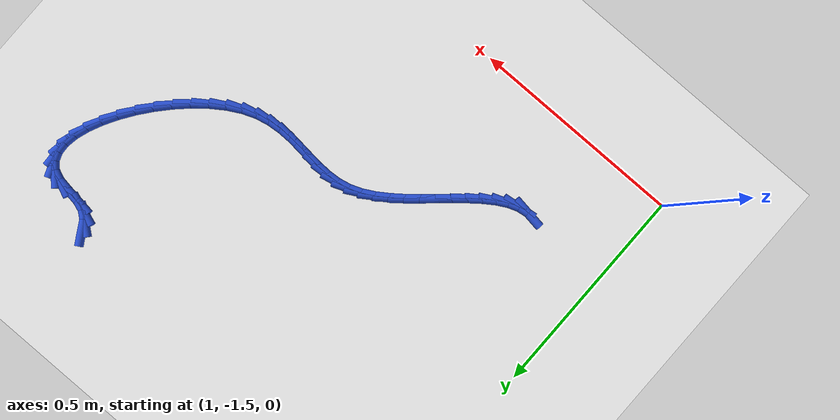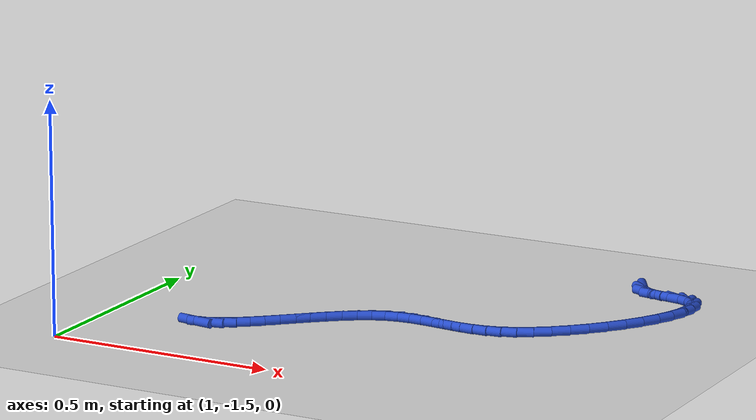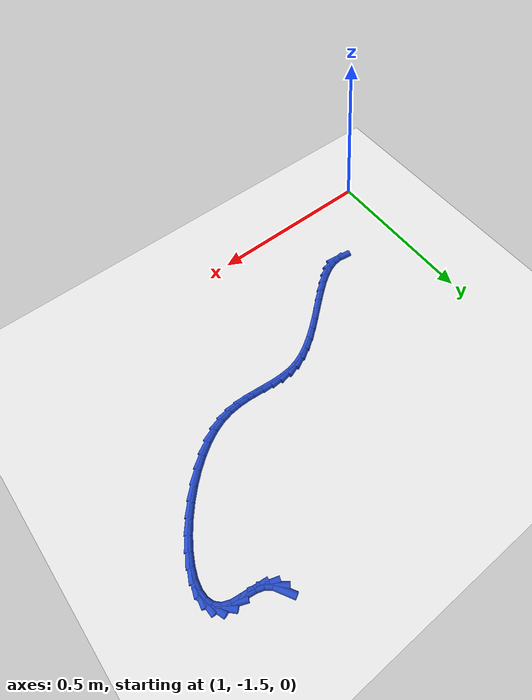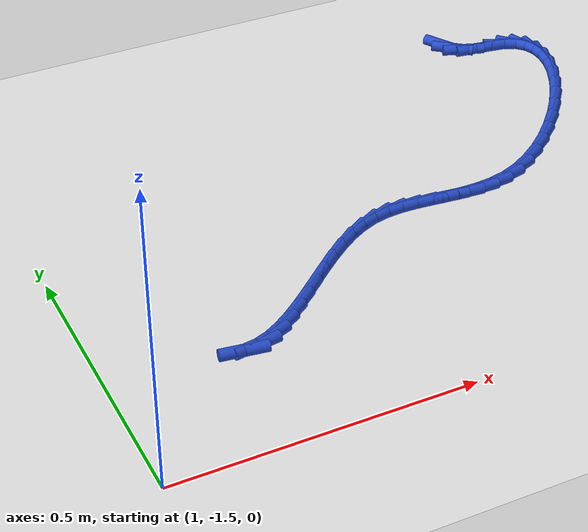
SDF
<sdf version="1.6">
 <world name="default">
  <model name="ground_plane">
   <static>1</static>
   <link name="link">
    <collision name="collision">
     <geometry><plane><normal>0 0 1</normal><size>100 100</size></plane></geometry>
     <surface><friction><ode><mu>100</mu><mu2>50</mu2></ode></friction></surface>
    </collision>
    <visual name="visual">
     <cast_shadows>0</cast_shadows>
     <geometry><plane><normal>0 0 1</normal><size>100 100</size></plane></geometry>
     <material>
      <script><uri>file://media/materials/scripts/gazebo.material</uri><name>Gazebo/WhiteGlow</name></script>
     </material>
    </visual>
   </link>
  </model>
  <model name="line">
   <link name="link_149">
    <pose>1.933272897632597 -0.6272035513180001 0.01 0 1.57 -1.0485199919013697</pose>
    <collision name="collision">
     <geometry><cylinder><radius>0.01</radius><length>0.08</length></cylinder></geometry>
    </collision>
    <visual name="visual">
     <material>
      <script><name>Gazebo/Blue</name><uri>file://media/materials/scripts/gazebo.material</uri></script>
     </material>
     <geometry><cylinder><radius>0.01</radius><length>0.08</length></cylinder></geometry>
    </visual>
   </link>
   <link name="link_150">
    <pose>1.9435389623741792 -0.6450393267967356 0.01 0 1.57 -0.6817144069645771</pose>
    <collision name="collision">
     <geometry><cylinder><radius>0.01</radius><length>0.08</length></cylinder></geometry>
    </collision>
    <visual name="visual">
     <material>
      <script><name>Gazebo/Blue</name><uri>file://media/materials/scripts/gazebo.material</uri></script>
     </material>
     <geometry><cylinder><radius>0.01</radius><length>0.08</length></cylinder></geometry>
    </visual>
   </link>
   <link name="link_151">
    <pose>1.9598958158896775 -0.6583129269860671 0.01 0 1.57 -0.3409675205098047</pose>
    <collision name="collision">
     <geometry><cylinder><radius>0.01</radius><length>0.08</length></cylinder></geometry>
    </collision>
    <visual name="visual">
     <material>
      <script><name>Gazebo/Blue</name><uri>file://media/materials/scripts/gazebo.material</uri></script>
     </material>
     <geometry><cylinder><radius>0.01</radius><length>0.08</length></cylinder></geometry>
    </visual>
   </link>
   <link name="link_152">
    <pose>1.9830498011918594 -0.6665285592056602 0.01 0 1.57 -0.13670767205928291</pose>
    <collision name="collision">
     <geometry><cylinder><radius>0.01</radius><length>0.08</length></cylinder></geometry>
    </collision>
    <visual name="visual">
     <material>
      <script><name>Gazebo/Blue</name><uri>file://media/materials/scripts/gazebo.material</uri></script>
     </material>
     <geometry><cylinder><radius>0.01</radius><length>0.08</length></cylinder></geometry>
    </visual>
   </link>
   <link name="link_153">
    <pose>2.0119743921731588 -0.6705075916727451 0.01 0 1.57 -0.1566440936238921</pose>
    <collision name="collision">
     <geometry><cylinder><radius>0.01</radius><length>0.08</length></cylinder></geometry>
    </collision>
    <visual name="visual">
     <material>
      <script><name>Gazebo/Blue</name><uri>file://media/materials/scripts/gazebo.material</uri></script>
     </material>
     <geometry><cylinder><radius>0.01</radius><length>0.08</length></cylinder></geometry>
    </visual>
   </link>
   <link name="link_154">
    <pose>2.040464910424676 -0.6750073273228432 0.01 0 1.57 -0.4142991693848907</pose>
    <collision name="collision">
     <geometry><cylinder><radius>0.01</radius><length>0.08</length></cylinder></geometry>
    </collision>
    <visual name="visual">
     <material>
      <script><name>Gazebo/Blue</name><uri>file://media/materials/scripts/gazebo.material</uri></script>
     </material>
     <geometry><cylinder><radius>0.01</radius><length>0.08</length></cylinder></geometry>
    </visual>
   </link>
   <link name="link_155">
    <pose>2.0624125277230676 -0.6846588382454566 0.01 0 1.57 -0.8142571966492038</pose>
    <collision name="collision">
     <geometry><cylinder><radius>0.01</radius><length>0.08</length></cylinder></geometry>
    </collision>
    <visual name="visual">
     <material>
      <script><name>Gazebo/Blue</name><uri>file://media/materials/scripts/gazebo.material</uri></script>
     </material>
     <geometry><cylinder><radius>0.01</radius><length>0.08</length></cylinder></geometry>
    </visual>
   </link>
   <link name="link_156">
    <pose>2.0768346310569448 -0.6999383392045715 0.01 0 1.57 -1.2157274904272437</pose>
    <collision name="collision">
     <geometry><cylinder><radius>0.01</radius><length>0.08</length></cylinder></geometry>
    </collision>
    <visual name="visual">
     <material>
      <script><name>Gazebo/Blue</name><uri>file://media/materials/scripts/gazebo.material</uri></script>
     </material>
     <geometry><cylinder><radius>0.01</radius><length>0.08</length></cylinder></geometry>
    </visual>
   </link>
   <link name="link_157">
    <pose>2.0842977883127296 -0.7200664157454046 0.01 0 1.57 -1.526558970409639</pose>
    <collision name="collision">
     <geometry><cylinder><radius>0.01</radius><length>0.08</length></cylinder></geometry>
    </collision>
    <visual name="visual">
     <material>
      <script><name>Gazebo/Blue</name><uri>file://media/materials/scripts/gazebo.material</uri></script>
     </material>
     <geometry><cylinder><radius>0.01</radius><length>0.08</length></cylinder></geometry>
    </visual>
   </link>
   <link name="link_158">
    <pose>2.0853688971075584 -0.7442633861625771 0.01 0 1.57 1.3995295979028581</pose>
    <collision name="collision">
     <geometry><cylinder><radius>0.01</radius><length>0.08</length></cylinder></geometry>
    </collision>
    <visual name="visual">
     <material>
      <script><name>Gazebo/Blue</name><uri>file://media/materials/scripts/gazebo.material</uri></script>
     </material>
     <geometry><cylinder><radius>0.01</radius><length>0.08</length></cylinder></geometry>
    </visual>
   </link>
   <link name="link_159">
    <pose>2.0806148550585686 -0.7717495687507102 0.01 0 1.57 1.2486340423599236</pose>
    <collision name="collision">
     <geometry><cylinder><radius>0.01</radius><length>0.08</length></cylinder></geometry>
    </collision>
    <visual name="visual">
     <material>
      <script><name>Gazebo/Blue</name><uri>file://media/materials/scripts/gazebo.material</uri></script>
     </material>
     <geometry><cylinder><radius>0.01</radius><length>0.08</length></cylinder></geometry>
    </visual>
   </link>
   <link name="link_160">
    <pose>2.070602559782897 -0.8017452818044247 0.01 0 1.57 1.1368024465950453</pose>
    <collision name="collision">
     <geometry><cylinder><radius>0.01</radius><length>0.08</length></cylinder></geometry>
    </collision>
    <visual name="visual">
     <material>
      <script><name>Gazebo/Blue</name><uri>file://media/materials/scripts/gazebo.material</uri></script>
     </material>
     <geometry><cylinder><radius>0.01</radius><length>0.08</length></cylinder></geometry>
    </visual>
   </link>
   <link name="link_161">
    <pose>2.0558989088976802 -0.8334708436183419 0.01 0 1.57 1.0480525516493537</pose>
    <collision name="collision">
     <geometry><cylinder><radius>0.01</radius><length>0.08</length></cylinder></geometry>
    </collision>
    <visual name="visual">
     <material>
      <script><name>Gazebo/Blue</name><uri>file://media/materials/scripts/gazebo.material</uri></script>
     </material>
     <geometry><cylinder><radius>0.01</radius><length>0.08</length></cylinder></geometry>
    </visual>
   </link>
   <link name="link_162">
    <pose>2.037070800020055 -0.8661465724870822 0.01 0 1.57 0.9725744187295285</pose>
    <collision name="collision">
     <geometry><cylinder><radius>0.01</radius><length>0.08</length></cylinder></geometry>
    </collision>
    <visual name="visual">
     <material>
      <script><name>Gazebo/Blue</name><uri>file://media/materials/scripts/gazebo.material</uri></script>
     </material>
     <geometry><cylinder><radius>0.01</radius><length>0.08</length></cylinder></geometry>
    </visual>
   </link>
   <link name="link_163">
    <pose>2.014685130767158 -0.8989927867052666 0.01 0 1.57 0.9039215594914466</pose>
    <collision name="collision">
     <geometry><cylinder><radius>0.01</radius><length>0.08</length></cylinder></geometry>
    </collision>
    <visual name="visual">
     <material>
      <script><name>Gazebo/Blue</name><uri>file://media/materials/scripts/gazebo.material</uri></script>
     </material>
     <geometry><cylinder><radius>0.01</radius><length>0.08</length></cylinder></geometry>
    </visual>
   </link>
   <link name="link_164">
    <pose>1.9893087987561262 -0.9312298045675163 0.01 0 1.57 0.8373230454366403</pose>
    <collision name="collision">
     <geometry><cylinder><radius>0.01</radius><length>0.08</length></cylinder></geometry>
    </collision>
    <visual name="visual">
     <material>
      <script><name>Gazebo/Blue</name><uri>file://media/materials/scripts/gazebo.material</uri></script>
     </material>
     <geometry><cylinder><radius>0.01</radius><length>0.08</length></cylinder></geometry>
    </visual>
   </link>
   <link name="link_165">
    <pose>1.9615087016040955 -0.9620779443684531 0.01 0 1.57 0.7686454878702392</pose>
    <collision name="collision">
     <geometry><cylinder><radius>0.01</radius><length>0.08</length></cylinder></geometry>
    </collision>
    <visual name="visual">
     <material>
      <script><name>Gazebo/Blue</name><uri>file://media/materials/scripts/gazebo.material</uri></script>
     </material>
     <geometry><cylinder><radius>0.01</radius><length>0.08</length></cylinder></geometry>
    </visual>
   </link>
   <link name="link_166">
    <pose>1.9318517369282047 -0.9907575244026962 0.01 0 1.57 0.6936355108028671</pose>
    <collision name="collision">
     <geometry><cylinder><radius>0.01</radius><length>0.08</length></cylinder></geometry>
    </collision>
    <visual name="visual">
     <material>
      <script><name>Gazebo/Blue</name><uri>file://media/materials/scripts/gazebo.material</uri></script>
     </material>
     <geometry><cylinder><radius>0.01</radius><length>0.08</length></cylinder></geometry>
    </visual>
   </link>
   <link name="link_167">
    <pose>1.9009048023455895 -1.016488862964867 0.01 0 1.57 0.6072082182983375</pose>
    <collision name="collision">
     <geometry><cylinder><radius>0.01</radius><length>0.08</length></cylinder></geometry>
    </collision>
    <visual name="visual">
     <material>
      <script><name>Gazebo/Blue</name><uri>file://media/materials/scripts/gazebo.material</uri></script>
     </material>
     <geometry><cylinder><radius>0.01</radius><length>0.08</length></cylinder></geometry>
    </visual>
   </link>
   <link name="link_168">
    <pose>1.869234795473386 -1.0384922783495867 0.01 0 1.57 0.5026359834200846</pose>
    <collision name="collision">
     <geometry><cylinder><radius>0.01</radius><length>0.08</length></cylinder></geometry>
    </collision>
    <visual name="visual">
     <material>
      <script><name>Gazebo/Blue</name><uri>file://media/materials/scripts/gazebo.material</uri></script>
     </material>
     <geometry><cylinder><radius>0.01</radius><length>0.08</length></cylinder></geometry>
    </visual>
   </link>
   <link name="link_169">
    <pose>1.8374086139287316 -1.0559880888514763 0.01 0 1.57 0.3710347021415157</pose>
    <collision name="collision">
     <geometry><cylinder><radius>0.01</radius><length>0.08</length></cylinder></geometry>
    </collision>
    <visual name="visual">
     <material>
      <script><name>Gazebo/Blue</name><uri>file://media/materials/scripts/gazebo.material</uri></script>
     </material>
     <geometry><cylinder><radius>0.01</radius><length>0.08</length></cylinder></geometry>
    </visual>
   </link>
   <link name="link_170">
    <pose>1.8059879254107667 -1.0682124334172352 0.01 0 1.57 0.22257541724513172</pose>
    <collision name="collision">
     <geometry><cylinder><radius>0.01</radius><length>0.08</length></cylinder></geometry>
    </collision>
    <visual name="visual">
     <material>
      <script><name>Gazebo/Blue</name><uri>file://media/materials/scripts/gazebo.material</uri></script>
     </material>
     <geometry><cylinder><radius>0.01</radius><length>0.08</length></cylinder></geometry>
    </visual>
   </link>
   <link name="link_171">
    <pose>1.7752830730910603 -1.0751617149043768 0.01 0 1.57 0.09135434685519551</pose>
    <collision name="collision">
     <geometry><cylinder><radius>0.01</radius><length>0.08</length></cylinder></geometry>
    </collision>
    <visual name="visual">
     <material>
      <script><name>Gazebo/Blue</name><uri>file://media/materials/scripts/gazebo.material</uri></script>
     </material>
     <geometry><cylinder><radius>0.01</radius><length>0.08</length></cylinder></geometry>
    </visual>
   </link>
   <link name="link_172">
    <pose>1.745247062144111 -1.077913293869862 0.01 0 1.57 -0.00972418356324189</pose>
    <collision name="collision">
     <geometry><cylinder><radius>0.01</radius><length>0.08</length></cylinder></geometry>
    </collision>
    <visual name="visual">
     <material>
      <script><name>Gazebo/Blue</name><uri>file://media/materials/scripts/gazebo.material</uri></script>
     </material>
     <geometry><cylinder><radius>0.01</radius><length>0.08</length></cylinder></geometry>
    </visual>
   </link>
   <link name="link_173">
    <pose>1.7158056384439402 -1.0776269910371403 0.01 0 1.57 -0.07469762860860067</pose>
    <collision name="collision">
     <geometry><cylinder><radius>0.01</radius><length>0.08</length></cylinder></geometry>
    </collision>
    <visual name="visual">
     <material>
      <script><name>Gazebo/Blue</name><uri>file://media/materials/scripts/gazebo.material</uri></script>
     </material>
     <geometry><cylinder><radius>0.01</radius><length>0.08</length></cylinder></geometry>
    </visual>
   </link>
   <link name="link_174">
    <pose>1.6868845478645698 -1.0754626271296641 0.01 0 1.57 -0.10088906590190873</pose>
    <collision name="collision">
     <geometry><cylinder><radius>0.01</radius><length>0.08</length></cylinder></geometry>
    </collision>
    <visual name="visual">
     <material>
      <script><name>Gazebo/Blue</name><uri>file://media/materials/scripts/gazebo.material</uri></script>
     </material>
     <geometry><cylinder><radius>0.01</radius><length>0.08</length></cylinder></geometry>
    </visual>
   </link>
   <link name="link_175">
    <pose>1.6584095362800202 -1.072580022870883 0.01 0 1.57 -0.08664187261336506</pose>
    <collision name="collision">
     <geometry><cylinder><radius>0.01</radius><length>0.08</length></cylinder></geometry>
    </collision>
    <visual name="visual">
     <material>
      <script><name>Gazebo/Blue</name><uri>file://media/materials/scripts/gazebo.material</uri></script>
     </material>
     <geometry><cylinder><radius>0.01</radius><length>0.08</length></cylinder></geometry>
    </visual>
   </link>
   <link name="link_176">
    <pose>1.6303063495643122 -1.0701389989842485 0.01 0 1.57 -0.030186985959458238</pose>
    <collision name="collision">
     <geometry><cylinder><radius>0.01</radius><length>0.08</length></cylinder></geometry>
    </collision>
    <visual name="visual">
     <material>
      <script><name>Gazebo/Blue</name><uri>file://media/materials/scripts/gazebo.material</uri></script>
     </material>
     <geometry><cylinder><radius>0.01</radius><length>0.08</length></cylinder></geometry>
    </visual>
   </link>
   <link name="link_177">
    <pose>1.6025007335914683 -1.069299376193211 0.01 0 1.57 0.0695554467782995</pose>
    <collision name="collision">
     <geometry><cylinder><radius>0.01</radius><length>0.08</length></cylinder></geometry>
    </collision>
    <visual name="visual">
     <material>
      <script><name>Gazebo/Blue</name><uri>file://media/materials/scripts/gazebo.material</uri></script>
     </material>
     <geometry><cylinder><radius>0.01</radius><length>0.08</length></cylinder></geometry>
    </visual>
   </link>
   <link name="link_178">
    <pose>1.5749184342355085 -1.071220975221221 0.01 0 1.57 0.20984149854443496</pose>
    <collision name="collision">
     <geometry><cylinder><radius>0.01</radius><length>0.08</length></cylinder></geometry>
    </collision>
    <visual name="visual">
     <material>
      <script><name>Gazebo/Blue</name><uri>file://media/materials/scripts/gazebo.material</uri></script>
     </material>
     <geometry><cylinder><radius>0.01</radius><length>0.08</length></cylinder></geometry>
    </visual>
   </link>
   <link name="link_179">
    <pose>1.5474851973704546 -1.0770636167917294 0.01 0 1.57 0.37004362015655407</pose>
    <collision name="collision">
     <geometry><cylinder><radius>0.01</radius><length>0.08</length></cylinder></geometry>
    </collision>
    <visual name="visual">
     <material>
      <script><name>Gazebo/Blue</name><uri>file://media/materials/scripts/gazebo.material</uri></script>
     </material>
     <geometry><cylinder><radius>0.01</radius><length>0.08</length></cylinder></geometry>
    </visual>
   </link>
   <link name="link_180">
    <pose>1.5201455256892316 -1.0876690402788687 0.01 0 1.57 0.49936027799884064</pose>
    <collision name="collision">
     <geometry><cylinder><radius>0.01</radius><length>0.08</length></cylinder></geometry>
    </collision>
    <visual name="visual">
     <material>
      <script><name>Gazebo/Blue</name><uri>file://media/materials/scripts/gazebo.material</uri></script>
     </material>
     <geometry><cylinder><radius>0.01</radius><length>0.08</length></cylinder></geometry>
    </visual>
   </link>
   <link name="link_181">
    <pose>1.4929242060987 -1.102517511598557 0.01 0 1.57 0.592334418384098</pose>
    <collision name="collision">
     <geometry><cylinder><radius>0.01</radius><length>0.08</length></cylinder></geometry>
    </collision>
    <visual name="visual">
     <material>
      <script><name>Gazebo/Blue</name><uri>file://media/materials/scripts/gazebo.material</uri></script>
     </material>
     <geometry><cylinder><radius>0.01</radius><length>0.08</length></cylinder></geometry>
    </visual>
   </link>
   <link name="link_182">
    <pose>1.465867501588559 -1.1207251015736006 0.01 0 1.57 0.6564473393881012</pose>
    <collision name="collision">
     <geometry><cylinder><radius>0.01</radius><length>0.08</length></cylinder></geometry>
    </collision>
    <visual name="visual">
     <material>
      <script><name>Gazebo/Blue</name><uri>file://media/materials/scripts/gazebo.material</uri></script>
     </material>
     <geometry><cylinder><radius>0.01</radius><length>0.08</length></cylinder></geometry>
    </visual>
   </link>
   <link name="link_183">
    <pose>1.4390216753793532 -1.1414078771120582 0.01 0 1.57 0.6973249769818722</pose>
    <collision name="collision">
     <geometry><cylinder><radius>0.01</radius><length>0.08</length></cylinder></geometry>
    </collision>
    <visual name="visual">
     <material>
      <script><name>Gazebo/Blue</name><uri>file://media/materials/scripts/gazebo.material</uri></script>
     </material>
     <geometry><cylinder><radius>0.01</radius><length>0.08</length></cylinder></geometry>
    </visual>
   </link>
   <link name="link_184">
    <pose>1.4124329906916295 -1.163681905121988 0.01 0 1.57 0.718436143125934</pose>
    <collision name="collision">
     <geometry><cylinder><radius>0.01</radius><length>0.08</length></cylinder></geometry>
    </collision>
    <visual name="visual">
     <material>
      <script><name>Gazebo/Blue</name><uri>file://media/materials/scripts/gazebo.material</uri></script>
     </material>
     <geometry><cylinder><radius>0.01</radius><length>0.08</length></cylinder></geometry>
    </visual>
   </link>
   <link name="link_185">
    <pose>1.3861477107459332 -1.1866632525114493 0.01 0 1.57 0.7212504304443574</pose>
    <collision name="collision">
     <geometry><cylinder><radius>0.01</radius><length>0.08</length></cylinder></geometry>
    </collision>
    <visual name="visual">
     <material>
      <script><name>Gazebo/Blue</name><uri>file://media/materials/scripts/gazebo.material</uri></script>
     </material>
     <geometry><cylinder><radius>0.01</radius><length>0.08</length></cylinder></geometry>
    </visual>
   </link>
   <link name="link_186">
    <pose>1.3602120987628097 -1.209467986188499 0.01 0 1.57 0.7052995249664774</pose>
    <collision name="collision">
     <geometry><cylinder><radius>0.01</radius><length>0.08</length></cylinder></geometry>
    </collision>
    <visual name="visual">
     <material>
      <script><name>Gazebo/Blue</name><uri>file://media/materials/scripts/gazebo.material</uri></script>
     </material>
     <geometry><cylinder><radius>0.01</radius><length>0.08</length></cylinder></geometry>
    </visual>
   </link>
   <link name="link_187">
    <pose>1.334672417962805 -1.2312121730611965 0.01 0 1.57 0.6679432740631557</pose>
    <collision name="collision">
     <geometry><cylinder><radius>0.01</radius><length>0.08</length></cylinder></geometry>
    </collision>
    <visual name="visual">
     <material>
      <script><name>Gazebo/Blue</name><uri>file://media/materials/scripts/gazebo.material</uri></script>
     </material>
     <geometry><cylinder><radius>0.01</radius><length>0.08</length></cylinder></geometry>
    </visual>
   </link>
   <link name="link_188">
    <pose>1.309574931566464 -1.2510118800376004 0.01 0 1.57 0.6037369414707605</pose>
    <collision name="collision">
     <geometry><cylinder><radius>0.01</radius><length>0.08</length></cylinder></geometry>
    </collision>
    <visual name="visual">
     <material>
      <script><name>Gazebo/Blue</name><uri>file://media/materials/scripts/gazebo.material</uri></script>
     </material>
     <geometry><cylinder><radius>0.01</radius><length>0.08</length></cylinder></geometry>
    </visual>
   </link>
   <link name="link_189">
    <pose>1.2849659027943343 -1.2679831740257679 0.01 0 1.57 0.5034195714968386</pose>
    <collision name="collision">
     <geometry><cylinder><radius>0.01</radius><length>0.08</length></cylinder></geometry>
    </collision>
    <visual name="visual">
     <material>
      <script><name>Gazebo/Blue</name><uri>file://media/materials/scripts/gazebo.material</uri></script>
     </material>
     <geometry><cylinder><radius>0.01</radius><length>0.08</length></cylinder></geometry>
    </visual>
   </link>
   <link name="link_190">
    <pose>1.260891594866961 -1.281242121933758 0.01 0 1.57 0.35326146422852334</pose>
    <collision name="collision">
     <geometry><cylinder><radius>0.01</radius><length>0.08</length></cylinder></geometry>
    </collision>
    <visual name="visual">
     <material>
      <script><name>Gazebo/Blue</name><uri>file://media/materials/scripts/gazebo.material</uri></script>
     </material>
     <geometry><cylinder><radius>0.01</radius><length>0.08</length></cylinder></geometry>
    </visual>
   </link>
   <link name="link_191">
    <pose>1.237398271004889 -1.289904790669629 0.01 0 1.57 0.138289723621604</pose>
    <collision name="collision">
     <geometry><cylinder><radius>0.01</radius><length>0.08</length></cylinder></geometry>
    </collision>
    <visual name="visual">
     <material>
      <script><name>Gazebo/Blue</name><uri>file://media/materials/scripts/gazebo.material</uri></script>
     </material>
     <geometry><cylinder><radius>0.01</radius><length>0.08</length></cylinder></geometry>
    </visual>
   </link>
   <link name="link_192">
    <pose>1.2145321944286647 -1.2930872471414392 0.01 0 1.57 -0.14239699964426555</pose>
    <collision name="collision">
     <geometry><cylinder><radius>0.01</radius><length>0.08</length></cylinder></geometry>
    </collision>
    <visual name="visual">
     <material>
      <script><name>Gazebo/Blue</name><uri>file://media/materials/scripts/gazebo.material</uri></script>
     </material>
     <geometry><cylinder><radius>0.01</radius><length>0.08</length></cylinder></geometry>
    </visual>
   </link>
  </model>
 </world>
</sdf>
